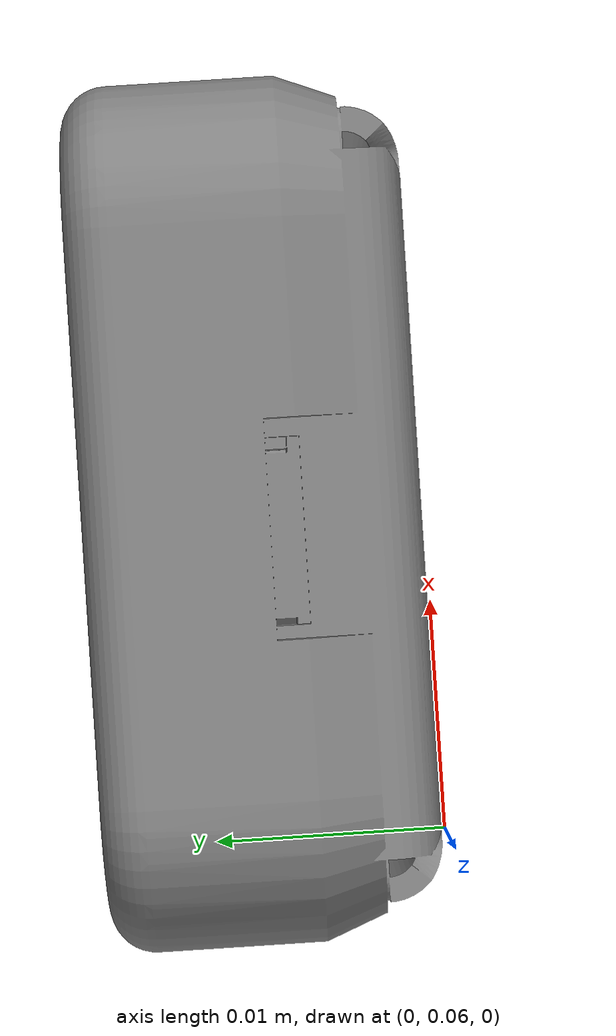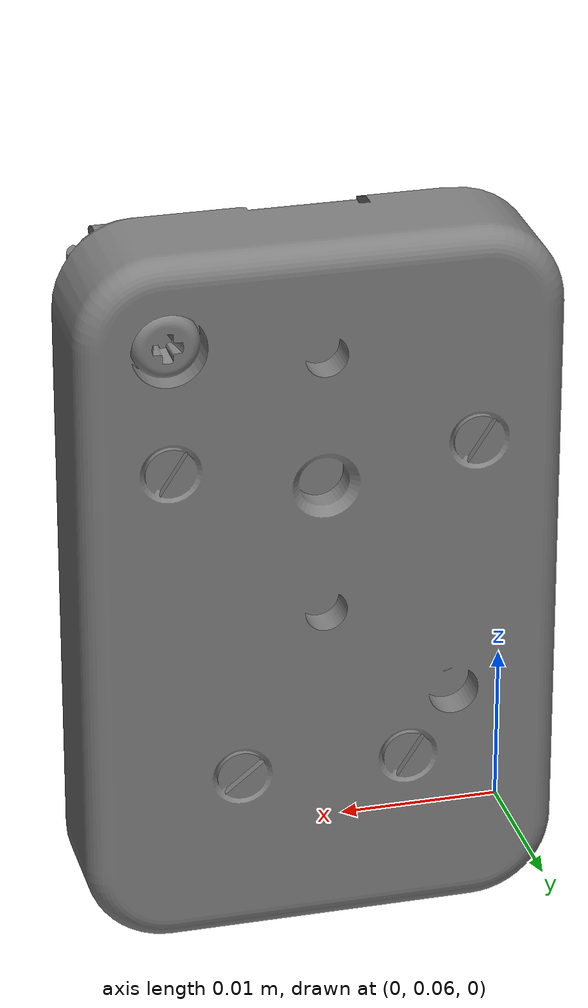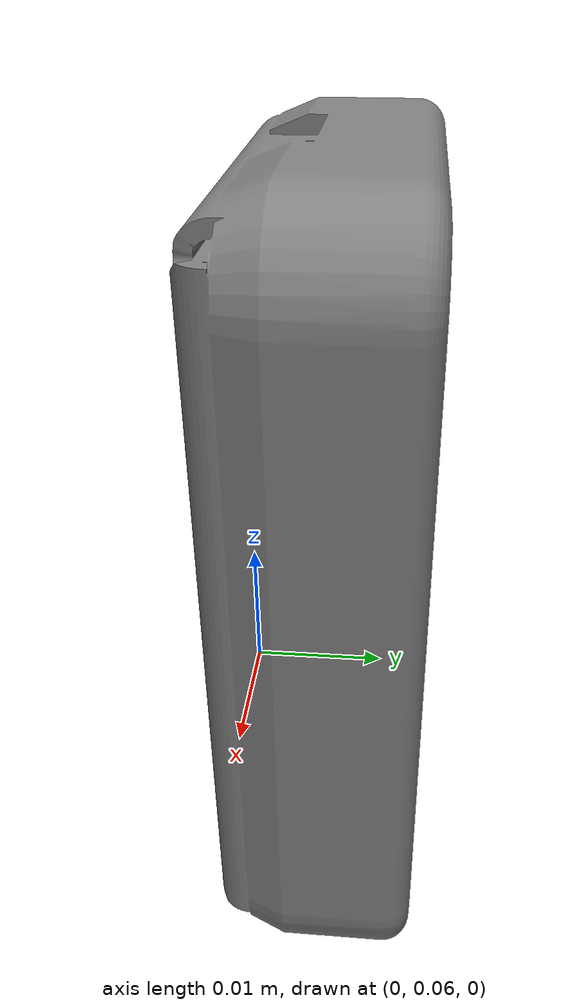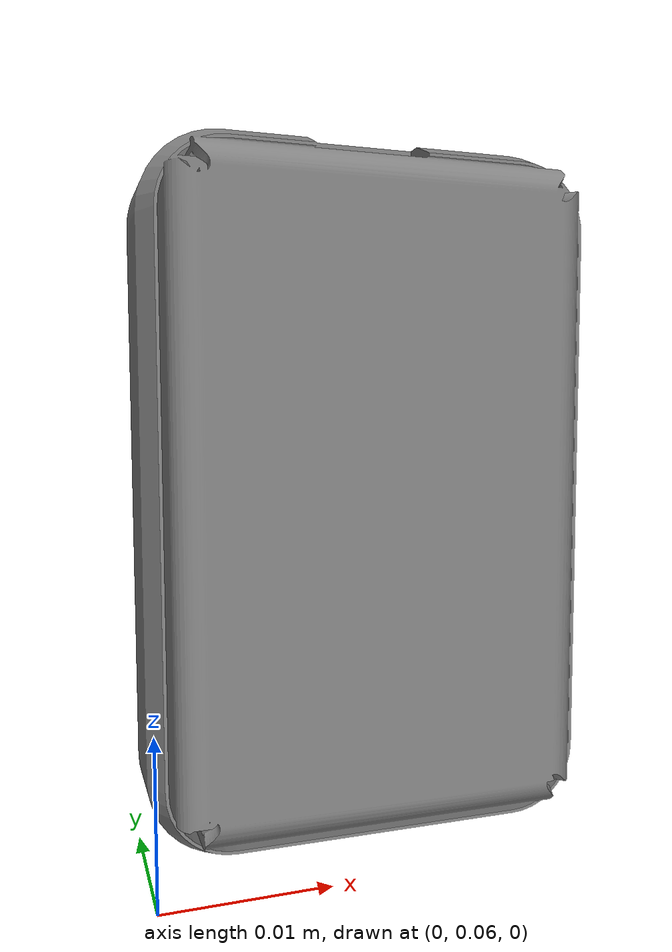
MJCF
<mujoco model="test touch sensor">
    <option timestep="0.001" solver="CG" tolerance="1e-6"/>

    <size nconmax="500" njmax="5000" nstack="100000000"/>

    <asset>
        <!-- arm models -->
        <mesh file="fingerTip.STL"/>
        <material name="black" specular="1" shininess="0.5" reflectance="1" emission="0" rgba="0.2 0.2 0.2 1"/>
    </asset>

    <worldbody>
        <light diffuse=".5 .5 .5" pos="0 0 3" dir="0 0 -1"/>

        <body name="base_link" pos="0 0 0">
            <geom name="fingerTip" type="mesh" mesh="fingerTip" pos="0 0 0"/>
        </body>

    </worldbody>

</mujoco>
